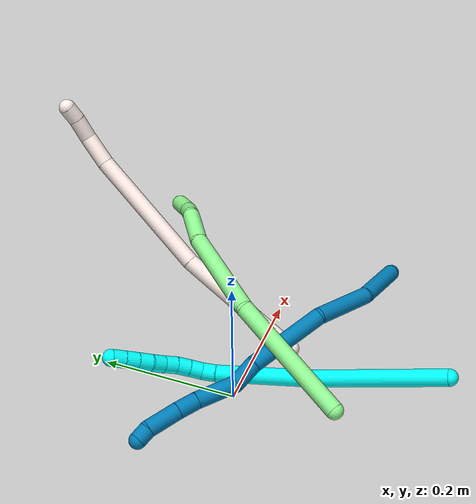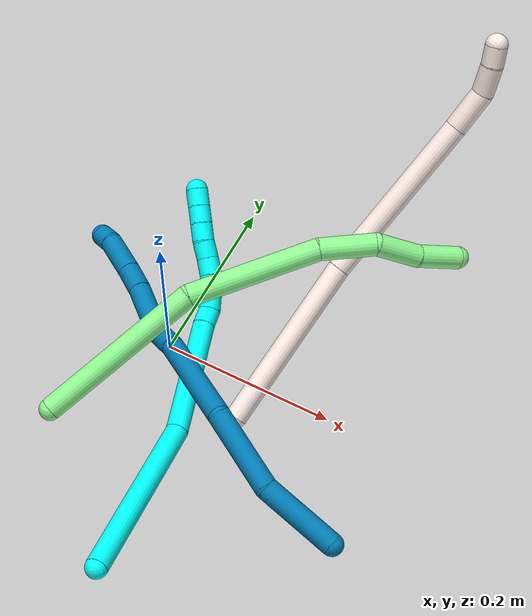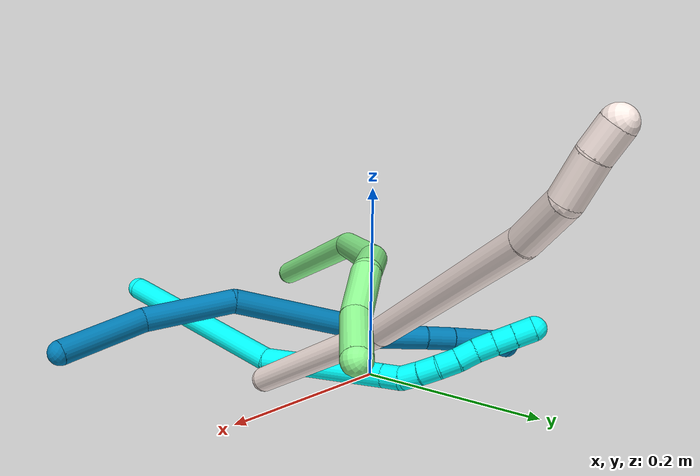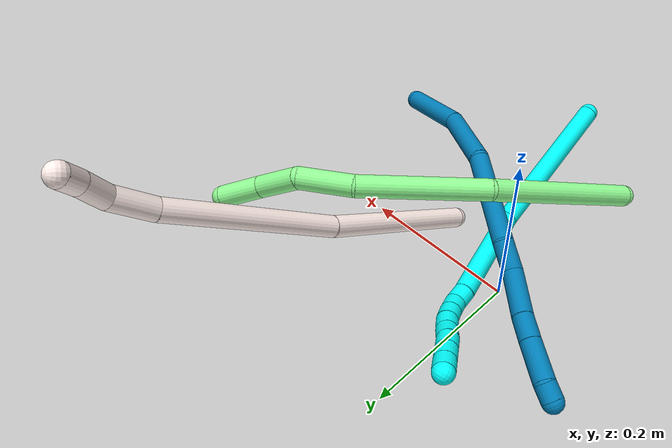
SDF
<sdf version="1.7">
 <world name="default">
  <model name="3">
   <static>0</static>
   <link name="3">
    <collision name="collision-cylinder-e_1_1_4">
     <pose>-0.0055 0.029108 -0.09682 -2.84955 -0.05435 0.365522</pose>
     <geometry><cylinder><radius>0.0125</radius><length>0.202501</length></cylinder></geometry>
     <surface>
      <friction><ode><mu>1.16</mu><mu2>1.16</mu2><slip1>0</slip1><slip2>0</slip2></ode></friction>
      <contact><ode><kp>1e+06</kp><kd>1</kd><max_vel>0</max_vel><min_depth>0.001</min_depth></ode></contact>
     </surface>
    </collision>
    <visual name="visual-cylinder-e_1_1_4">
     <pose>-0.0055 0.029108 -0.09682 -2.84955 -0.05435 0.365522</pose>
     <geometry><cylinder><radius>0.0125</radius><length>0.202501</length></cylinder></geometry>
     <material><ambient>0.003922 1 0.996078 1</ambient></material>
    </visual>
    <collision name="collision-cylinder-e_2_4_5">
     <pose>-0.032882 0.088092 -0.250668 -2.65902 -0.327622 1.18295</pose>
     <geometry><cylinder><radius>0.0125</radius><length>0.135995</length></cylinder></geometry>
     <surface>
      <friction><ode><mu>1.16</mu><mu2>1.16</mu2><slip1>0</slip1><slip2>0</slip2></ode></friction>
      <contact><ode><kp>1e+06</kp><kd>1</kd><max_vel>0</max_vel><min_depth>0.001</min_depth></ode></contact>
     </surface>
    </collision>
    <visual name="visual-cylinder-e_2_4_5">
     <pose>-0.032882 0.088092 -0.250668 -2.65902 -0.327622 1.18295</pose>
     <geometry><cylinder><radius>0.0125</radius><length>0.135995</length></cylinder></geometry>
     <material><ambient>0.003922 1 0.996078 1</ambient></material>
    </visual>
    <collision name="collision-cylinder-e_3_5_6">
     <pose>-0.057045 0.123144 -0.316121 -2.59071 -0.226885 0.766389</pose>
     <geometry><cylinder><radius>0.0125</radius><length>0.020294</length></cylinder></geometry>
     <surface>
      <friction><ode><mu>1.16</mu><mu2>1.16</mu2><slip1>0</slip1><slip2>0</slip2></ode></friction>
      <contact><ode><kp>1e+06</kp><kd>1</kd><max_vel>0</max_vel><min_depth>0.001</min_depth></ode></contact>
     </surface>
    </collision>
    <visual name="visual-cylinder-e_3_5_6">
     <pose>-0.057045 0.123144 -0.316121 -2.59071 -0.226885 0.766389</pose>
     <geometry><cylinder><radius>0.0125</radius><length>0.020294</length></cylinder></geometry>
     <material><ambient>0.003922 1 0.996078 1</ambient></material>
    </visual>
    <collision name="collision-cylinder-e_4_6_7">
     <pose>-0.064445 0.134758 -0.330315 -2.3015 -0.534467 1.09984</pose>
     <geometry><cylinder><radius>0.0125</radius><length>0.020092</length></cylinder></geometry>
     <surface>
      <friction><ode><mu>1.16</mu><mu2>1.16</mu2><slip1>0</slip1><slip2>0</slip2></ode></friction>
      <contact><ode><kp>1e+06</kp><kd>1</kd><max_vel>0</max_vel><min_depth>0.001</min_depth></ode></contact>
     </surface>
    </collision>
    <visual name="visual-cylinder-e_4_6_7">
     <pose>-0.064445 0.134758 -0.330315 -2.3015 -0.534467 1.09984</pose>
     <geometry><cylinder><radius>0.0125</radius><length>0.020092</length></cylinder></geometry>
     <material><ambient>0.003922 1 0.996078 1</ambient></material>
    </visual>
    <collision name="collision-cylinder-e_5_7_8">
     <pose>-0.075359 0.14743 -0.341385 -2.27535 -0.616371 1.20582</pose>
     <geometry><cylinder><radius>0.0125</radius><length>0.020056</length></cylinder></geometry>
     <surface>
      <friction><ode><mu>1.16</mu><mu2>1.16</mu2><slip1>0</slip1><slip2>0</slip2></ode></friction>
      <contact><ode><kp>1e+06</kp><kd>1</kd><max_vel>0</max_vel><min_depth>0.001</min_depth></ode></contact>
     </surface>
    </collision>
    <visual name="visual-cylinder-e_5_7_8">
     <pose>-0.075359 0.14743 -0.341385 -2.27535 -0.616371 1.20582</pose>
     <geometry><cylinder><radius>0.0125</radius><length>0.020056</length></cylinder></geometry>
     <material><ambient>0.003922 1 0.996078 1</ambient></material>
    </visual>
    <collision name="collision-cylinder-e_6_8_9">
     <pose>-0.088357 0.158835 -0.351543 -2.32503 -0.792802 1.53783</pose>
     <geometry><cylinder><radius>0.0125</radius><length>0.020219</length></cylinder></geometry>
     <surface>
      <friction><ode><mu>1.16</mu><mu2>1.16</mu2><slip1>0</slip1><slip2>0</slip2></ode></friction>
      <contact><ode><kp>1e+06</kp><kd>1</kd><max_vel>0</max_vel><min_depth>0.001</min_depth></ode></contact>
     </surface>
    </collision>
    <visual name="visual-cylinder-e_6_8_9">
     <pose>-0.088357 0.158835 -0.351543 -2.32503 -0.792802 1.53783</pose>
     <geometry><cylinder><radius>0.0125</radius><length>0.020219</length></cylinder></geometry>
     <material><ambient>0.003922 1 0.996078 1</ambient></material>
    </visual>
    <collision name="collision-cylinder-e_7_9_10">
     <pose>-0.103281 0.169444 -0.360055 -2.1625 -0.867277 1.43089</pose>
     <geometry><cylinder><radius>0.0125</radius><length>0.020254</length></cylinder></geometry>
     <surface>
      <friction><ode><mu>1.16</mu><mu2>1.16</mu2><slip1>0</slip1><slip2>0</slip2></ode></friction>
      <contact><ode><kp>1e+06</kp><kd>1</kd><max_vel>0</max_vel><min_depth>0.001</min_depth></ode></contact>
     </surface>
    </collision>
    <visual name="visual-cylinder-e_7_9_10">
     <pose>-0.103281 0.169444 -0.360055 -2.1625 -0.867277 1.43089</pose>
     <geometry><cylinder><radius>0.0125</radius><length>0.020254</length></cylinder></geometry>
     <material><ambient>0.003922 1 0.996078 1</ambient></material>
    </visual>
    <collision name="collision-cylinder-e_8_10_11">
     <pose>-0.117959 0.180644 -0.368581 -2.27261 -0.744667 1.39917</pose>
     <geometry><cylinder><radius>0.0125</radius><length>0.020525</length></cylinder></geometry>
     <surface>
      <friction><ode><mu>1.16</mu><mu2>1.16</mu2><slip1>0</slip1><slip2>0</slip2></ode></friction>
      <contact><ode><kp>1e+06</kp><kd>1</kd><max_vel>0</max_vel><min_depth>0.001</min_depth></ode></contact>
     </surface>
    </collision>
    <visual name="visual-cylinder-e_8_10_11">
     <pose>-0.117959 0.180644 -0.368581 -2.27261 -0.744667 1.39917</pose>
     <geometry><cylinder><radius>0.0125</radius><length>0.020525</length></cylinder></geometry>
     <material><ambient>0.003922 1 0.996078 1</ambient></material>
    </visual>
    <collision name="collision-cylinder-e_9_11_12">
     <pose>-0.131672 0.191936 -0.378335 -2.29407 -0.741702 1.42285</pose>
     <geometry><cylinder><radius>0.0125</radius><length>0.020008</length></cylinder></geometry>
     <surface>
      <friction><ode><mu>1.16</mu><mu2>1.16</mu2><slip1>0</slip1><slip2>0</slip2></ode></friction>
      <contact><ode><kp>1e+06</kp><kd>1</kd><max_vel>0</max_vel><min_depth>0.001</min_depth></ode></contact>
     </surface>
    </collision>
    <visual name="visual-cylinder-e_9_11_12">
     <pose>-0.131672 0.191936 -0.378335 -2.29407 -0.741702 1.42285</pose>
     <geometry><cylinder><radius>0.0125</radius><length>0.020008</length></cylinder></geometry>
     <material><ambient>0.003922 1 0.996078 1</ambient></material>
    </visual>
    <collision name="collision-cylinder-e_10_12_2">
     <pose>-0.145243 0.202992 -0.388076 -2.29207 -0.746821 1.42769</pose>
     <geometry><cylinder><radius>0.0125</radius><length>0.020057</length></cylinder></geometry>
     <surface>
      <friction><ode><mu>1.16</mu><mu2>1.16</mu2><slip1>0</slip1><slip2>0</slip2></ode></friction>
      <contact><ode><kp>1e+06</kp><kd>1</kd><max_vel>0</max_vel><min_depth>0.001</min_depth></ode></contact>
     </surface>
    </collision>
    <visual name="visual-cylinder-e_10_12_2">
     <pose>-0.145243 0.202992 -0.388076 -2.29207 -0.746821 1.42769</pose>
     <geometry><cylinder><radius>0.0125</radius><length>0.020057</length></cylinder></geometry>
     <material><ambient>0.003922 1 0.996078 1</ambient></material>
    </visual>
    <collision name="collision-sphere-2">
     <pose>-0.152055 0.208519 -0.392936 0 -0 0</pose>
     <geometry><sphere><radius>0.0125</radius></sphere></geometry>
     <surface>
      <friction><ode><mu>1.16</mu><mu2>1.16</mu2><slip1>0</slip1><slip2>0</slip2></ode></friction>
      <contact><ode><kp>1e+06</kp><kd>1</kd><max_vel>0</max_vel><min_depth>0.001</min_depth></ode></contact>
     </surface>
    </collision>
    <visual name="visual-sphere-2">
     <pose>-0.152055 0.208519 -0.392936 0 -0 0</pose>
     <geometry><sphere><radius>0.0125</radius></sphere></geometry>
     <material><ambient>0.003922 1 0.996078 1</ambient></material>
    </visual>
    <collision name="collision-sphere-12">
     <pose>-0.13843 0.197466 -0.383217 0 -0 0</pose>
     <geometry><sphere><radius>0.0125</radius></sphere></geometry>
     <surface>
      <friction><ode><mu>1.16</mu><mu2>1.16</mu2><slip1>0</slip1><slip2>0</slip2></ode></friction>
      <contact><ode><kp>1e+06</kp><kd>1</kd><max_vel>0</max_vel><min_depth>0.001</min_depth></ode></contact>
     </surface>
    </collision>
    <visual name="visual-sphere-12">
     <pose>-0.13843 0.197466 -0.383217 0 -0 0</pose>
     <geometry><sphere><radius>0.0125</radius></sphere></geometry>
     <material><ambient>0.003922 1 0.996078 1</ambient></material>
    </visual>
    <collision name="collision-sphere-11">
     <pose>-0.124914 0.186407 -0.373453 0 -0 0</pose>
     <geometry><sphere><radius>0.0125</radius></sphere></geometry>
     <surface>
      <friction><ode><mu>1.16</mu><mu2>1.16</mu2><slip1>0</slip1><slip2>0</slip2></ode></friction>
      <contact><ode><kp>1e+06</kp><kd>1</kd><max_vel>0</max_vel><min_depth>0.001</min_depth></ode></contact>
     </surface>
    </collision>
    <visual name="visual-sphere-11">
     <pose>-0.124914 0.186407 -0.373453 0 -0 0</pose>
     <geometry><sphere><radius>0.0125</radius></sphere></geometry>
     <material><ambient>0.003922 1 0.996078 1</ambient></material>
    </visual>
    <collision name="collision-sphere-10">
     <pose>-0.111004 0.174881 -0.363709 0 -0 0</pose>
     <geometry><sphere><radius>0.0125</radius></sphere></geometry>
     <surface>
      <friction><ode><mu>1.16</mu><mu2>1.16</mu2><slip1>0</slip1><slip2>0</slip2></ode></friction>
      <contact><ode><kp>1e+06</kp><kd>1</kd><max_vel>0</max_vel><min_depth>0.001</min_depth></ode></contact>
     </surface>
    </collision>
    <visual name="visual-sphere-10">
     <pose>-0.111004 0.174881 -0.363709 0 -0 0</pose>
     <geometry><sphere><radius>0.0125</radius></sphere></geometry>
     <material><ambient>0.003922 1 0.996078 1</ambient></material>
    </visual>
    <collision name="collision-sphere-9">
     <pose>-0.095558 0.164006 -0.356401 0 -0 0</pose>
     <geometry><sphere><radius>0.0125</radius></sphere></geometry>
     <surface>
      <friction><ode><mu>1.16</mu><mu2>1.16</mu2><slip1>0</slip1><slip2>0</slip2></ode></friction>
      <contact><ode><kp>1e+06</kp><kd>1</kd><max_vel>0</max_vel><min_depth>0.001</min_depth></ode></contact>
     </surface>
    </collision>
    <visual name="visual-sphere-9">
     <pose>-0.095558 0.164006 -0.356401 0 -0 0</pose>
     <geometry><sphere><radius>0.0125</radius></sphere></geometry>
     <material><ambient>0.003922 1 0.996078 1</ambient></material>
    </visual>
    <collision name="collision-sphere-4">
     <pose>-0.011001 0.058216 -0.19364 0 -0 0</pose>
     <geometry><sphere><radius>0.0125</radius></sphere></geometry>
     <surface>
      <friction><ode><mu>1.16</mu><mu2>1.16</mu2><slip1>0</slip1><slip2>0</slip2></ode></friction>
      <contact><ode><kp>1e+06</kp><kd>1</kd><max_vel>0</max_vel><min_depth>0.001</min_depth></ode></contact>
     </surface>
    </collision>
    <visual name="visual-sphere-4">
     <pose>-0.011001 0.058216 -0.19364 0 -0 0</pose>
     <geometry><sphere><radius>0.0125</radius></sphere></geometry>
     <material><ambient>0.003922 1 0.996078 1</ambient></material>
    </visual>
    <collision name="collision-sphere-1">
     <geometry><sphere><radius>0.0125</radius></sphere></geometry>
     <surface>
      <friction><ode><mu>1.16</mu><mu2>1.16</mu2><slip1>0</slip1><slip2>0</slip2></ode></friction>
      <contact><ode><kp>1e+06</kp><kd>1</kd><max_vel>0</max_vel><min_depth>0.001</min_depth></ode></contact>
     </surface>
    </collision>
    <visual name="visual-sphere-1">
     <geometry><sphere><radius>0.0125</radius></sphere></geometry>
     <material><ambient>0.003922 1 0.996078 1</ambient></material>
    </visual>
    <collision name="collision-sphere-8">
     <pose>-0.081156 0.153664 -0.346684 0 -0 0</pose>
     <geometry><sphere><radius>0.0125</radius></sphere></geometry>
     <surface>
      <friction><ode><mu>1.16</mu><mu2>1.16</mu2><slip1>0</slip1><slip2>0</slip2></ode></friction>
      <contact><ode><kp>1e+06</kp><kd>1</kd><max_vel>0</max_vel><min_depth>0.001</min_depth></ode></contact>
     </surface>
    </collision>
    <visual name="visual-sphere-8">
     <pose>-0.081156 0.153664 -0.346684 0 -0 0</pose>
     <geometry><sphere><radius>0.0125</radius></sphere></geometry>
     <material><ambient>0.003922 1 0.996078 1</ambient></material>
    </visual>
    <collision name="collision-sphere-5">
     <pose>-0.054763 0.117969 -0.307697 0 -0 0</pose>
     <geometry><sphere><radius>0.0125</radius></sphere></geometry>
     <surface>
      <friction><ode><mu>1.16</mu><mu2>1.16</mu2><slip1>0</slip1><slip2>0</slip2></ode></friction>
      <contact><ode><kp>1e+06</kp><kd>1</kd><max_vel>0</max_vel><min_depth>0.001</min_depth></ode></contact>
     </surface>
    </collision>
    <visual name="visual-sphere-5">
     <pose>-0.054763 0.117969 -0.307697 0 -0 0</pose>
     <geometry><sphere><radius>0.0125</radius></sphere></geometry>
     <material><ambient>0.003922 1 0.996078 1</ambient></material>
    </visual>
    <collision name="collision-sphere-6">
     <pose>-0.059328 0.12832 -0.324546 0 -0 0</pose>
     <geometry><sphere><radius>0.0125</radius></sphere></geometry>
     <surface>
      <friction><ode><mu>1.16</mu><mu2>1.16</mu2><slip1>0</slip1><slip2>0</slip2></ode></friction>
      <contact><ode><kp>1e+06</kp><kd>1</kd><max_vel>0</max_vel><min_depth>0.001</min_depth></ode></contact>
     </surface>
    </collision>
    <visual name="visual-sphere-6">
     <pose>-0.059328 0.12832 -0.324546 0 -0 0</pose>
     <geometry><sphere><radius>0.0125</radius></sphere></geometry>
     <material><ambient>0.003922 1 0.996078 1</ambient></material>
    </visual>
    <collision name="collision-sphere-7">
     <pose>-0.069562 0.141195 -0.336085 0 -0 0</pose>
     <geometry><sphere><radius>0.0125</radius></sphere></geometry>
     <surface>
      <friction><ode><mu>1.16</mu><mu2>1.16</mu2><slip1>0</slip1><slip2>0</slip2></ode></friction>
      <contact><ode><kp>1e+06</kp><kd>1</kd><max_vel>0</max_vel><min_depth>0.001</min_depth></ode></contact>
     </surface>
    </collision>
    <visual name="visual-sphere-7">
     <pose>-0.069562 0.141195 -0.336085 0 -0 0</pose>
     <geometry><sphere><radius>0.0125</radius></sphere></geometry>
     <material><ambient>0.003922 1 0.996078 1</ambient></material>
    </visual>
    <inertial>
     <pose>-0.042793 0.088601 -0.221827 0 -0 0</pose>
     <mass>0.5</mass>
     <inertia>
      <ixx>0.001167</ixx>
      <ixy>0</ixy>
      <ixz>0</ixz>
      <iyy>-0.000199</iyy>
      <iyz>0</iyz>
      <izz>-0.000219</izz>
     </inertia>
    </inertial>
   </link>
   <pose>0.081779 -0.28851 0.064923 0.977005 0.331558 -0.056261</pose>
  </model>
  <model name="9">
   <static>0</static>
   <link name="9">
    <collision name="collision-cylinder-e_1_1_4">
     <pose>-0.023718 0.025127 0.02842 -0.723987 -0.558759 0.216425</pose>
     <geometry><cylinder><radius>0.0125</radius><length>0.089478</length></cylinder></geometry>
     <surface>
      <friction><ode><mu>1.16</mu><mu2>1.16</mu2><slip1>0</slip1><slip2>0</slip2></ode></friction>
      <contact><ode><kp>1e+06</kp><kd>1</kd><max_vel>0</max_vel><min_depth>0.001</min_depth></ode></contact>
     </surface>
    </collision>
    <visual name="visual-cylinder-e_1_1_4">
     <pose>-0.023718 0.025127 0.02842 -0.723987 -0.558759 0.216425</pose>
     <geometry><cylinder><radius>0.0125</radius><length>0.089478</length></cylinder></geometry>
     <material><ambient>0 0.490196 0.709804 1</ambient></material>
    </visual>
    <collision name="collision-cylinder-e_2_4_5">
     <pose>-0.07998 0.063645 0.087889 -0.407163 -0.766273 0.166032</pose>
     <geometry><cylinder><radius>0.0125</radius><length>0.093862</length></cylinder></geometry>
     <surface>
      <friction><ode><mu>1.16</mu><mu2>1.16</mu2><slip1>0</slip1><slip2>0</slip2></ode></friction>
      <contact><ode><kp>1e+06</kp><kd>1</kd><max_vel>0</max_vel><min_depth>0.001</min_depth></ode></contact>
     </surface>
    </collision>
    <visual name="visual-cylinder-e_2_4_5">
     <pose>-0.07998 0.063645 0.087889 -0.407163 -0.766273 0.166032</pose>
     <geometry><cylinder><radius>0.0125</radius><length>0.093862</length></cylinder></geometry>
     <material><ambient>0 0.490196 0.709804 1</ambient></material>
    </visual>
    <collision name="collision-cylinder-e_3_5_6">
     <pose>-0.14159 0.077095 0.17024 -0.001162 -0.515463 0.000306</pose>
     <geometry><cylinder><radius>0.0125</radius><length>0.117926</length></cylinder></geometry>
     <surface>
      <friction><ode><mu>1.16</mu><mu2>1.16</mu2><slip1>0</slip1><slip2>0</slip2></ode></friction>
      <contact><ode><kp>1e+06</kp><kd>1</kd><max_vel>0</max_vel><min_depth>0.001</min_depth></ode></contact>
     </surface>
    </collision>
    <visual name="visual-cylinder-e_3_5_6">
     <pose>-0.14159 0.077095 0.17024 -0.001162 -0.515463 0.000306</pose>
     <geometry><cylinder><radius>0.0125</radius><length>0.117926</length></cylinder></geometry>
     <material><ambient>0 0.490196 0.709804 1</ambient></material>
    </visual>
    <collision name="collision-cylinder-e_4_6_7">
     <pose>-0.176149 0.076396 0.239856 0.041379 -0.291231 -0.006069</pose>
     <geometry><cylinder><radius>0.0125</radius><length>0.038273</length></cylinder></geometry>
     <surface>
      <friction><ode><mu>1.16</mu><mu2>1.16</mu2><slip1>0</slip1><slip2>0</slip2></ode></friction>
      <contact><ode><kp>1e+06</kp><kd>1</kd><max_vel>0</max_vel><min_depth>0.001</min_depth></ode></contact>
     </surface>
    </collision>
    <visual name="visual-cylinder-e_4_6_7">
     <pose>-0.176149 0.076396 0.239856 0.041379 -0.291231 -0.006069</pose>
     <geometry><cylinder><radius>0.0125</radius><length>0.038273</length></cylinder></geometry>
     <material><ambient>0 0.490196 0.709804 1</ambient></material>
    </visual>
    <collision name="collision-cylinder-e_5_7_8">
     <pose>-0.202741 0.076263 0.280372 -0.028136 -0.75972 0.011234</pose>
     <geometry><cylinder><radius>0.0125</radius><length>0.061266</length></cylinder></geometry>
     <surface>
      <friction><ode><mu>1.16</mu><mu2>1.16</mu2><slip1>0</slip1><slip2>0</slip2></ode></friction>
      <contact><ode><kp>1e+06</kp><kd>1</kd><max_vel>0</max_vel><min_depth>0.001</min_depth></ode></contact>
     </surface>
    </collision>
    <visual name="visual-cylinder-e_5_7_8">
     <pose>-0.202741 0.076263 0.280372 -0.028136 -0.75972 0.011234</pose>
     <geometry><cylinder><radius>0.0125</radius><length>0.061266</length></cylinder></geometry>
     <material><ambient>0 0.490196 0.709804 1</ambient></material>
    </visual>
    <collision name="collision-cylinder-e_6_8_9">
     <pose>-0.233366 0.077955 0.314445 -0.089666 -0.674279 0.031448</pose>
     <geometry><cylinder><radius>0.0125</radius><length>0.030519</length></cylinder></geometry>
     <surface>
      <friction><ode><mu>1.16</mu><mu2>1.16</mu2><slip1>0</slip1><slip2>0</slip2></ode></friction>
      <contact><ode><kp>1e+06</kp><kd>1</kd><max_vel>0</max_vel><min_depth>0.001</min_depth></ode></contact>
     </surface>
    </collision>
    <visual name="visual-cylinder-e_6_8_9">
     <pose>-0.233366 0.077955 0.314445 -0.089666 -0.674279 0.031448</pose>
     <geometry><cylinder><radius>0.0125</radius><length>0.030519</length></cylinder></geometry>
     <material><ambient>0 0.490196 0.709804 1</ambient></material>
    </visual>
    <collision name="collision-cylinder-e_7_9_10">
     <pose>-0.257047 0.081055 0.345943 -0.103219 -0.622301 0.033221</pose>
     <geometry><cylinder><radius>0.0125</radius><length>0.048565</length></cylinder></geometry>
     <surface>
      <friction><ode><mu>1.16</mu><mu2>1.16</mu2><slip1>0</slip1><slip2>0</slip2></ode></friction>
      <contact><ode><kp>1e+06</kp><kd>1</kd><max_vel>0</max_vel><min_depth>0.001</min_depth></ode></contact>
     </surface>
    </collision>
    <visual name="visual-cylinder-e_7_9_10">
     <pose>-0.257047 0.081055 0.345943 -0.103219 -0.622301 0.033221</pose>
     <geometry><cylinder><radius>0.0125</radius><length>0.048565</length></cylinder></geometry>
     <material><ambient>0 0.490196 0.709804 1</ambient></material>
    </visual>
    <collision name="collision-cylinder-e_8_10_2">
     <pose>-0.274469 0.083922 0.375042 -0.087829 -0.330946 0.014677</pose>
     <geometry><cylinder><radius>0.0125</radius><length>0.020112</length></cylinder></geometry>
     <surface>
      <friction><ode><mu>1.16</mu><mu2>1.16</mu2><slip1>0</slip1><slip2>0</slip2></ode></friction>
      <contact><ode><kp>1e+06</kp><kd>1</kd><max_vel>0</max_vel><min_depth>0.001</min_depth></ode></contact>
     </surface>
    </collision>
    <visual name="visual-cylinder-e_8_10_2">
     <pose>-0.274469 0.083922 0.375042 -0.087829 -0.330946 0.014677</pose>
     <geometry><cylinder><radius>0.0125</radius><length>0.020112</length></cylinder></geometry>
     <material><ambient>0 0.490196 0.709804 1</ambient></material>
    </visual>
    <collision name="collision-sphere-2">
     <pose>-0.277737 0.084757 0.384515 0 -0 0</pose>
     <geometry><sphere><radius>0.0125</radius></sphere></geometry>
     <surface>
      <friction><ode><mu>1.16</mu><mu2>1.16</mu2><slip1>0</slip1><slip2>0</slip2></ode></friction>
      <contact><ode><kp>1e+06</kp><kd>1</kd><max_vel>0</max_vel><min_depth>0.001</min_depth></ode></contact>
     </surface>
    </collision>
    <visual name="visual-sphere-2">
     <pose>-0.277737 0.084757 0.384515 0 -0 0</pose>
     <geometry><sphere><radius>0.0125</radius></sphere></geometry>
     <material><ambient>0 0.490196 0.709804 1</ambient></material>
    </visual>
    <collision name="collision-sphere-10">
     <pose>-0.271202 0.083088 0.365568 0 -0 0</pose>
     <geometry><sphere><radius>0.0125</radius></sphere></geometry>
     <surface>
      <friction><ode><mu>1.16</mu><mu2>1.16</mu2><slip1>0</slip1><slip2>0</slip2></ode></friction>
      <contact><ode><kp>1e+06</kp><kd>1</kd><max_vel>0</max_vel><min_depth>0.001</min_depth></ode></contact>
     </surface>
    </collision>
    <visual name="visual-sphere-10">
     <pose>-0.271202 0.083088 0.365568 0 -0 0</pose>
     <geometry><sphere><radius>0.0125</radius></sphere></geometry>
     <material><ambient>0 0.490196 0.709804 1</ambient></material>
    </visual>
    <collision name="collision-sphere-9">
     <pose>-0.242893 0.079022 0.326317 0 -0 0</pose>
     <geometry><sphere><radius>0.0125</radius></sphere></geometry>
     <surface>
      <friction><ode><mu>1.16</mu><mu2>1.16</mu2><slip1>0</slip1><slip2>0</slip2></ode></friction>
      <contact><ode><kp>1e+06</kp><kd>1</kd><max_vel>0</max_vel><min_depth>0.001</min_depth></ode></contact>
     </surface>
    </collision>
    <visual name="visual-sphere-9">
     <pose>-0.242893 0.079022 0.326317 0 -0 0</pose>
     <geometry><sphere><radius>0.0125</radius></sphere></geometry>
     <material><ambient>0 0.490196 0.709804 1</ambient></material>
    </visual>
    <collision name="collision-sphere-4">
     <pose>-0.047435 0.050254 0.056839 0 -0 0</pose>
     <geometry><sphere><radius>0.0125</radius></sphere></geometry>
     <surface>
      <friction><ode><mu>1.16</mu><mu2>1.16</mu2><slip1>0</slip1><slip2>0</slip2></ode></friction>
      <contact><ode><kp>1e+06</kp><kd>1</kd><max_vel>0</max_vel><min_depth>0.001</min_depth></ode></contact>
     </surface>
    </collision>
    <visual name="visual-sphere-4">
     <pose>-0.047435 0.050254 0.056839 0 -0 0</pose>
     <geometry><sphere><radius>0.0125</radius></sphere></geometry>
     <material><ambient>0 0.490196 0.709804 1</ambient></material>
    </visual>
    <collision name="collision-sphere-1">
     <geometry><sphere><radius>0.0125</radius></sphere></geometry>
     <surface>
      <friction><ode><mu>1.16</mu><mu2>1.16</mu2><slip1>0</slip1><slip2>0</slip2></ode></friction>
      <contact><ode><kp>1e+06</kp><kd>1</kd><max_vel>0</max_vel><min_depth>0.001</min_depth></ode></contact>
     </surface>
    </collision>
    <visual name="visual-sphere-1">
     <geometry><sphere><radius>0.0125</radius></sphere></geometry>
     <material><ambient>0 0.490196 0.709804 1</ambient></material>
    </visual>
    <collision name="collision-sphere-8">
     <pose>-0.223839 0.076888 0.302573 0 -0 0</pose>
     <geometry><sphere><radius>0.0125</radius></sphere></geometry>
     <surface>
      <friction><ode><mu>1.16</mu><mu2>1.16</mu2><slip1>0</slip1><slip2>0</slip2></ode></friction>
      <contact><ode><kp>1e+06</kp><kd>1</kd><max_vel>0</max_vel><min_depth>0.001</min_depth></ode></contact>
     </surface>
    </collision>
    <visual name="visual-sphere-8">
     <pose>-0.223839 0.076888 0.302573 0 -0 0</pose>
     <geometry><sphere><radius>0.0125</radius></sphere></geometry>
     <material><ambient>0 0.490196 0.709804 1</ambient></material>
    </visual>
    <collision name="collision-sphere-5">
     <pose>-0.112525 0.077035 0.118938 0 -0 0</pose>
     <geometry><sphere><radius>0.0125</radius></sphere></geometry>
     <surface>
      <friction><ode><mu>1.16</mu><mu2>1.16</mu2><slip1>0</slip1><slip2>0</slip2></ode></friction>
      <contact><ode><kp>1e+06</kp><kd>1</kd><max_vel>0</max_vel><min_depth>0.001</min_depth></ode></contact>
     </surface>
    </collision>
    <visual name="visual-sphere-5">
     <pose>-0.112525 0.077035 0.118938 0 -0 0</pose>
     <geometry><sphere><radius>0.0125</radius></sphere></geometry>
     <material><ambient>0 0.490196 0.709804 1</ambient></material>
    </visual>
    <collision name="collision-sphere-6">
     <pose>-0.170655 0.077154 0.221541 0 -0 0</pose>
     <geometry><sphere><radius>0.0125</radius></sphere></geometry>
     <surface>
      <friction><ode><mu>1.16</mu><mu2>1.16</mu2><slip1>0</slip1><slip2>0</slip2></ode></friction>
      <contact><ode><kp>1e+06</kp><kd>1</kd><max_vel>0</max_vel><min_depth>0.001</min_depth></ode></contact>
     </surface>
    </collision>
    <visual name="visual-sphere-6">
     <pose>-0.170655 0.077154 0.221541 0 -0 0</pose>
     <geometry><sphere><radius>0.0125</radius></sphere></geometry>
     <material><ambient>0 0.490196 0.709804 1</ambient></material>
    </visual>
    <collision name="collision-sphere-7">
     <pose>-0.181644 0.075638 0.258171 0 -0 0</pose>
     <geometry><sphere><radius>0.0125</radius></sphere></geometry>
     <surface>
      <friction><ode><mu>1.16</mu><mu2>1.16</mu2><slip1>0</slip1><slip2>0</slip2></ode></friction>
      <contact><ode><kp>1e+06</kp><kd>1</kd><max_vel>0</max_vel><min_depth>0.001</min_depth></ode></contact>
     </surface>
    </collision>
    <visual name="visual-sphere-7">
     <pose>-0.181644 0.075638 0.258171 0 -0 0</pose>
     <geometry><sphere><radius>0.0125</radius></sphere></geometry>
     <material><ambient>0 0.490196 0.709804 1</ambient></material>
    </visual>
    <inertial>
     <pose>-0.14123 0.065826 0.18233 0 -0 0</pose>
     <mass>0.5</mass>
     <inertia>
      <ixx>0.000261</ixx>
      <ixy>0</ixy>
      <ixz>0</ixz>
      <iyy>0.000333</iyy>
      <iyz>0</iyz>
      <izz>0.000152</izz>
     </inertia>
    </inertial>
   </link>
   <pose>0.280859 -0.15183 0.056255 2.42684 0.599235 -1.23281</pose>
  </model>
  <model name="11">
   <static>0</static>
   <link name="11">
    <collision name="collision-cylinder-e_1_1_4">
     <pose>0.005002 0.008192 0.098965 -0.082593 0.050333 -0.00208</pose>
     <geometry><cylinder><radius>0.0125</radius><length>0.198859</length></cylinder></geometry>
     <surface>
      <friction><ode><mu>1.16</mu><mu2>1.16</mu2><slip1>0</slip1><slip2>0</slip2></ode></friction>
      <contact><ode><kp>1e+06</kp><kd>1</kd><max_vel>0</max_vel><min_depth>0.001</min_depth></ode></contact>
     </surface>
    </collision>
    <visual name="visual-cylinder-e_1_1_4">
     <pose>0.005002 0.008192 0.098965 -0.082593 0.050333 -0.00208</pose>
     <geometry><cylinder><radius>0.0125</radius><length>0.198859</length></cylinder></geometry>
     <material><ambient>1 0.933333 0.909804 1</ambient></material>
    </visual>
    <collision name="collision-cylinder-e_2_4_5">
     <pose>0.0007 0.021673 0.296407 -0.053642 -0.094073 0.002526</pose>
     <geometry><cylinder><radius>0.0125</radius><length>0.198114</length></cylinder></geometry>
     <surface>
      <friction><ode><mu>1.16</mu><mu2>1.16</mu2><slip1>0</slip1><slip2>0</slip2></ode></friction>
      <contact><ode><kp>1e+06</kp><kd>1</kd><max_vel>0</max_vel><min_depth>0.001</min_depth></ode></contact>
     </surface>
    </collision>
    <visual name="visual-cylinder-e_2_4_5">
     <pose>0.0007 0.021673 0.296407 -0.053642 -0.094073 0.002526</pose>
     <geometry><cylinder><radius>0.0125</radius><length>0.198114</length></cylinder></geometry>
     <material><ambient>1 0.933333 0.909804 1</ambient></material>
    </visual>
    <collision name="collision-cylinder-e_3_5_6">
     <pose>-0.013704 0.030377 0.417582 -0.14941 -0.21861 0.016427</pose>
     <geometry><cylinder><radius>0.0125</radius><length>0.047025</length></cylinder></geometry>
     <surface>
      <friction><ode><mu>1.16</mu><mu2>1.16</mu2><slip1>0</slip1><slip2>0</slip2></ode></friction>
      <contact><ode><kp>1e+06</kp><kd>1</kd><max_vel>0</max_vel><min_depth>0.001</min_depth></ode></contact>
     </surface>
    </collision>
    <visual name="visual-cylinder-e_3_5_6">
     <pose>-0.013704 0.030377 0.417582 -0.14941 -0.21861 0.016427</pose>
     <geometry><cylinder><radius>0.0125</radius><length>0.047025</length></cylinder></geometry>
     <material><ambient>1 0.933333 0.909804 1</ambient></material>
    </visual>
    <collision name="collision-cylinder-e_4_6_7">
     <pose>-0.023818 0.042373 0.453683 -0.569369 -0.305278 0.089974</pose>
     <geometry><cylinder><radius>0.0125</radius><length>0.033372</length></cylinder></geometry>
     <surface>
      <friction><ode><mu>1.16</mu><mu2>1.16</mu2><slip1>0</slip1><slip2>0</slip2></ode></friction>
      <contact><ode><kp>1e+06</kp><kd>1</kd><max_vel>0</max_vel><min_depth>0.001</min_depth></ode></contact>
     </surface>
    </collision>
    <visual name="visual-cylinder-e_4_6_7">
     <pose>-0.023818 0.042373 0.453683 -0.569369 -0.305278 0.089974</pose>
     <geometry><cylinder><radius>0.0125</radius><length>0.033372</length></cylinder></geometry>
     <material><ambient>1 0.933333 0.909804 1</ambient></material>
    </visual>
    <collision name="collision-cylinder-e_5_7_2">
     <pose>-0.030924 0.057553 0.476036 -0.635529 -0.185861 0.061289</pose>
     <geometry><cylinder><radius>0.0125</radius><length>0.02263</length></cylinder></geometry>
     <surface>
      <friction><ode><mu>1.16</mu><mu2>1.16</mu2><slip1>0</slip1><slip2>0</slip2></ode></friction>
      <contact><ode><kp>1e+06</kp><kd>1</kd><max_vel>0</max_vel><min_depth>0.001</min_depth></ode></contact>
     </surface>
    </collision>
    <visual name="visual-cylinder-e_5_7_2">
     <pose>-0.030924 0.057553 0.476036 -0.635529 -0.185861 0.061289</pose>
     <geometry><cylinder><radius>0.0125</radius><length>0.02263</length></cylinder></geometry>
     <material><ambient>1 0.933333 0.909804 1</ambient></material>
    </visual>
    <collision name="collision-sphere-2">
     <pose>-0.033015 0.064154 0.484985 0 -0 0</pose>
     <geometry><sphere><radius>0.0125</radius></sphere></geometry>
     <surface>
      <friction><ode><mu>1.16</mu><mu2>1.16</mu2><slip1>0</slip1><slip2>0</slip2></ode></friction>
      <contact><ode><kp>1e+06</kp><kd>1</kd><max_vel>0</max_vel><min_depth>0.001</min_depth></ode></contact>
     </surface>
    </collision>
    <visual name="visual-sphere-2">
     <pose>-0.033015 0.064154 0.484985 0 -0 0</pose>
     <geometry><sphere><radius>0.0125</radius></sphere></geometry>
     <material><ambient>1 0.933333 0.909804 1</ambient></material>
    </visual>
    <collision name="collision-sphere-7">
     <pose>-0.028834 0.050953 0.467087 0 -0 0</pose>
     <geometry><sphere><radius>0.0125</radius></sphere></geometry>
     <surface>
      <friction><ode><mu>1.16</mu><mu2>1.16</mu2><slip1>0</slip1><slip2>0</slip2></ode></friction>
      <contact><ode><kp>1e+06</kp><kd>1</kd><max_vel>0</max_vel><min_depth>0.001</min_depth></ode></contact>
     </surface>
    </collision>
    <visual name="visual-sphere-7">
     <pose>-0.028834 0.050953 0.467087 0 -0 0</pose>
     <geometry><sphere><radius>0.0125</radius></sphere></geometry>
     <material><ambient>1 0.933333 0.909804 1</ambient></material>
    </visual>
    <collision name="collision-sphere-6">
     <pose>-0.018803 0.033793 0.440279 0 -0 0</pose>
     <geometry><sphere><radius>0.0125</radius></sphere></geometry>
     <surface>
      <friction><ode><mu>1.16</mu><mu2>1.16</mu2><slip1>0</slip1><slip2>0</slip2></ode></friction>
      <contact><ode><kp>1e+06</kp><kd>1</kd><max_vel>0</max_vel><min_depth>0.001</min_depth></ode></contact>
     </surface>
    </collision>
    <visual name="visual-sphere-6">
     <pose>-0.018803 0.033793 0.440279 0 -0 0</pose>
     <geometry><sphere><radius>0.0125</radius></sphere></geometry>
     <material><ambient>1 0.933333 0.909804 1</ambient></material>
    </visual>
    <collision name="collision-sphere-5">
     <pose>-0.008605 0.02696 0.394885 0 -0 0</pose>
     <geometry><sphere><radius>0.0125</radius></sphere></geometry>
     <surface>
      <friction><ode><mu>1.16</mu><mu2>1.16</mu2><slip1>0</slip1><slip2>0</slip2></ode></friction>
      <contact><ode><kp>1e+06</kp><kd>1</kd><max_vel>0</max_vel><min_depth>0.001</min_depth></ode></contact>
     </surface>
    </collision>
    <visual name="visual-sphere-5">
     <pose>-0.008605 0.02696 0.394885 0 -0 0</pose>
     <geometry><sphere><radius>0.0125</radius></sphere></geometry>
     <material><ambient>1 0.933333 0.909804 1</ambient></material>
    </visual>
    <collision name="collision-sphere-1">
     <geometry><sphere><radius>0.0125</radius></sphere></geometry>
     <surface>
      <friction><ode><mu>1.16</mu><mu2>1.16</mu2><slip1>0</slip1><slip2>0</slip2></ode></friction>
      <contact><ode><kp>1e+06</kp><kd>1</kd><max_vel>0</max_vel><min_depth>0.001</min_depth></ode></contact>
     </surface>
    </collision>
    <visual name="visual-sphere-1">
     <geometry><sphere><radius>0.0125</radius></sphere></geometry>
     <material><ambient>1 0.933333 0.909804 1</ambient></material>
    </visual>
    <collision name="collision-sphere-4">
     <pose>0.010005 0.016385 0.19793 0 -0 0</pose>
     <geometry><sphere><radius>0.0125</radius></sphere></geometry>
     <surface>
      <friction><ode><mu>1.16</mu><mu2>1.16</mu2><slip1>0</slip1><slip2>0</slip2></ode></friction>
      <contact><ode><kp>1e+06</kp><kd>1</kd><max_vel>0</max_vel><min_depth>0.001</min_depth></ode></contact>
     </surface>
    </collision>
    <visual name="visual-sphere-4">
     <pose>0.010005 0.016385 0.19793 0 -0 0</pose>
     <geometry><sphere><radius>0.0125</radius></sphere></geometry>
     <material><ambient>1 0.933333 0.909804 1</ambient></material>
    </visual>
    <inertial>
     <pose>-0.002011 0.020135 0.247905 0 -0 0</pose>
     <mass>0.5</mass>
     <inertia>
      <ixx>0.00133</ixx>
      <ixy>0</ixy>
      <ixz>0</ixz>
      <iyy>0.001337</iyy>
      <iyz>0</iyz>
      <izz>-2.4e-05</izz>
     </inertia>
    </inertial>
   </link>
   <pose>0.111793 -0.04852 0.011497 0.988805 0.679621 2.4413</pose>
  </model>
  <model name="13">
   <static>0</static>
   <link name="13">
    <collision name="collision-cylinder-e_1_1_4">
     <pose>0.018638 0.026282 0.088423 -0.288912 0.199361 -0.029095</pose>
     <geometry><cylinder><radius>0.0125</radius><length>0.188221</length></cylinder></geometry>
     <surface>
      <friction><ode><mu>1.16</mu><mu2>1.16</mu2><slip1>0</slip1><slip2>0</slip2></ode></friction>
      <contact><ode><kp>1e+06</kp><kd>1</kd><max_vel>0</max_vel><min_depth>0.001</min_depth></ode></contact>
     </surface>
    </collision>
    <visual name="visual-cylinder-e_1_1_4">
     <pose>0.018638 0.026282 0.088423 -0.288912 0.199361 -0.029095</pose>
     <geometry><cylinder><radius>0.0125</radius><length>0.188221</length></cylinder></geometry>
     <material><ambient>0.564706 0.984314 0.572549 1</ambient></material>
    </visual>
    <collision name="collision-cylinder-e_2_4_5">
     <pose>0.055382 0.096261 0.233699 -0.655296 0.247344 -0.084453</pose>
     <geometry><cylinder><radius>0.0125</radius><length>0.147912</length></cylinder></geometry>
     <surface>
      <friction><ode><mu>1.16</mu><mu2>1.16</mu2><slip1>0</slip1><slip2>0</slip2></ode></friction>
      <contact><ode><kp>1e+06</kp><kd>1</kd><max_vel>0</max_vel><min_depth>0.001</min_depth></ode></contact>
     </surface>
    </collision>
    <visual name="visual-cylinder-e_2_4_5">
     <pose>0.055382 0.096261 0.233699 -0.655296 0.247344 -0.084453</pose>
     <geometry><cylinder><radius>0.0125</radius><length>0.147912</length></cylinder></geometry>
     <material><ambient>0.564706 0.984314 0.572549 1</ambient></material>
    </visual>
    <collision name="collision-cylinder-e_3_5_6">
     <pose>0.085069 0.162257 0.308635 -0.889448 0.383376 -0.18445</pose>
     <geometry><cylinder><radius>0.0125</radius><length>0.061913</length></cylinder></geometry>
     <surface>
      <friction><ode><mu>1.16</mu><mu2>1.16</mu2><slip1>0</slip1><slip2>0</slip2></ode></friction>
      <contact><ode><kp>1e+06</kp><kd>1</kd><max_vel>0</max_vel><min_depth>0.001</min_depth></ode></contact>
     </surface>
    </collision>
    <visual name="visual-cylinder-e_3_5_6">
     <pose>0.085069 0.162257 0.308635 -0.889448 0.383376 -0.18445</pose>
     <geometry><cylinder><radius>0.0125</radius><length>0.061913</length></cylinder></geometry>
     <material><ambient>0.564706 0.984314 0.572549 1</ambient></material>
    </visual>
    <collision name="collision-cylinder-e_4_6_7">
     <pose>0.098407 0.209597 0.333575 -1.30347 0.067643 -0.051616</pose>
     <geometry><cylinder><radius>0.0125</radius><length>0.052046</length></cylinder></geometry>
     <surface>
      <friction><ode><mu>1.16</mu><mu2>1.16</mu2><slip1>0</slip1><slip2>0</slip2></ode></friction>
      <contact><ode><kp>1e+06</kp><kd>1</kd><max_vel>0</max_vel><min_depth>0.001</min_depth></ode></contact>
     </surface>
    </collision>
    <visual name="visual-cylinder-e_4_6_7">
     <pose>0.098407 0.209597 0.333575 -1.30347 0.067643 -0.051616</pose>
     <geometry><cylinder><radius>0.0125</radius><length>0.052046</length></cylinder></geometry>
     <material><ambient>0.564706 0.984314 0.572549 1</ambient></material>
    </visual>
    <collision name="collision-cylinder-e_5_7_2">
     <pose>0.100775 0.256872 0.351747 -1.10011 0.024394 -0.014958</pose>
     <geometry><cylinder><radius>0.0125</radius><length>0.049907</length></cylinder></geometry>
     <surface>
      <friction><ode><mu>1.16</mu><mu2>1.16</mu2><slip1>0</slip1><slip2>0</slip2></ode></friction>
      <contact><ode><kp>1e+06</kp><kd>1</kd><max_vel>0</max_vel><min_depth>0.001</min_depth></ode></contact>
     </surface>
    </collision>
    <visual name="visual-cylinder-e_5_7_2">
     <pose>0.100775 0.256872 0.351747 -1.10011 0.024394 -0.014958</pose>
     <geometry><cylinder><radius>0.0125</radius><length>0.049907</length></cylinder></geometry>
     <material><ambient>0.564706 0.984314 0.572549 1</ambient></material>
    </visual>
    <collision name="collision-sphere-2">
     <pose>0.101383 0.279106 0.36306 0 -0 0</pose>
     <geometry><sphere><radius>0.0125</radius></sphere></geometry>
     <surface>
      <friction><ode><mu>1.16</mu><mu2>1.16</mu2><slip1>0</slip1><slip2>0</slip2></ode></friction>
      <contact><ode><kp>1e+06</kp><kd>1</kd><max_vel>0</max_vel><min_depth>0.001</min_depth></ode></contact>
     </surface>
    </collision>
    <visual name="visual-sphere-2">
     <pose>0.101383 0.279106 0.36306 0 -0 0</pose>
     <geometry><sphere><radius>0.0125</radius></sphere></geometry>
     <material><ambient>0.564706 0.984314 0.572549 1</ambient></material>
    </visual>
    <collision name="collision-sphere-7">
     <pose>0.100166 0.234639 0.340434 0 -0 0</pose>
     <geometry><sphere><radius>0.0125</radius></sphere></geometry>
     <surface>
      <friction><ode><mu>1.16</mu><mu2>1.16</mu2><slip1>0</slip1><slip2>0</slip2></ode></friction>
      <contact><ode><kp>1e+06</kp><kd>1</kd><max_vel>0</max_vel><min_depth>0.001</min_depth></ode></contact>
     </surface>
    </collision>
    <visual name="visual-sphere-7">
     <pose>0.100166 0.234639 0.340434 0 -0 0</pose>
     <geometry><sphere><radius>0.0125</radius></sphere></geometry>
     <material><ambient>0.564706 0.984314 0.572549 1</ambient></material>
    </visual>
    <collision name="collision-sphere-6">
     <pose>0.096648 0.184556 0.326717 0 -0 0</pose>
     <geometry><sphere><radius>0.0125</radius></sphere></geometry>
     <surface>
      <friction><ode><mu>1.16</mu><mu2>1.16</mu2><slip1>0</slip1><slip2>0</slip2></ode></friction>
      <contact><ode><kp>1e+06</kp><kd>1</kd><max_vel>0</max_vel><min_depth>0.001</min_depth></ode></contact>
     </surface>
    </collision>
    <visual name="visual-sphere-6">
     <pose>0.096648 0.184556 0.326717 0 -0 0</pose>
     <geometry><sphere><radius>0.0125</radius></sphere></geometry>
     <material><ambient>0.564706 0.984314 0.572549 1</ambient></material>
    </visual>
    <collision name="collision-sphere-5">
     <pose>0.073489 0.139957 0.290552 0 -0 0</pose>
     <geometry><sphere><radius>0.0125</radius></sphere></geometry>
     <surface>
      <friction><ode><mu>1.16</mu><mu2>1.16</mu2><slip1>0</slip1><slip2>0</slip2></ode></friction>
      <contact><ode><kp>1e+06</kp><kd>1</kd><max_vel>0</max_vel><min_depth>0.001</min_depth></ode></contact>
     </surface>
    </collision>
    <visual name="visual-sphere-5">
     <pose>0.073489 0.139957 0.290552 0 -0 0</pose>
     <geometry><sphere><radius>0.0125</radius></sphere></geometry>
     <material><ambient>0.564706 0.984314 0.572549 1</ambient></material>
    </visual>
    <collision name="collision-sphere-1">
     <geometry><sphere><radius>0.0125</radius></sphere></geometry>
     <surface>
      <friction><ode><mu>1.16</mu><mu2>1.16</mu2><slip1>0</slip1><slip2>0</slip2></ode></friction>
      <contact><ode><kp>1e+06</kp><kd>1</kd><max_vel>0</max_vel><min_depth>0.001</min_depth></ode></contact>
     </surface>
    </collision>
    <visual name="visual-sphere-1">
     <geometry><sphere><radius>0.0125</radius></sphere></geometry>
     <material><ambient>0.564706 0.984314 0.572549 1</ambient></material>
    </visual>
    <collision name="collision-sphere-4">
     <pose>0.037276 0.052564 0.176847 0 -0 0</pose>
     <geometry><sphere><radius>0.0125</radius></sphere></geometry>
     <surface>
      <friction><ode><mu>1.16</mu><mu2>1.16</mu2><slip1>0</slip1><slip2>0</slip2></ode></friction>
      <contact><ode><kp>1e+06</kp><kd>1</kd><max_vel>0</max_vel><min_depth>0.001</min_depth></ode></contact>
     </surface>
    </collision>
    <visual name="visual-sphere-4">
     <pose>0.037276 0.052564 0.176847 0 -0 0</pose>
     <geometry><sphere><radius>0.0125</radius></sphere></geometry>
     <material><ambient>0.564706 0.984314 0.572549 1</ambient></material>
    </visual>
    <inertial>
     <pose>0.054235 0.105919 0.21047 0 -0 0</pose>
     <mass>0.5</mass>
     <inertia>
      <ixx>0.000829</ixx>
      <ixy>0</ixy>
      <ixz>0</ixz>
      <iyy>0.000764</iyy>
      <iyz>0</iyz>
      <izz>-0.00052</izz>
     </inertia>
    </inertial>
   </link>
   <pose>-0.048078 -0.162705 0.081728 -1.00221 -0.683458 -0.494162</pose>
  </model>
 </world>
</sdf>
